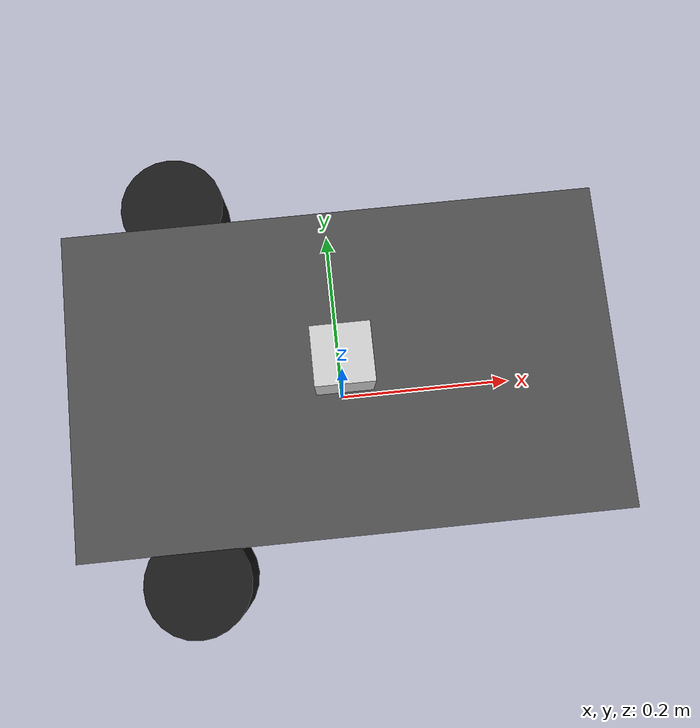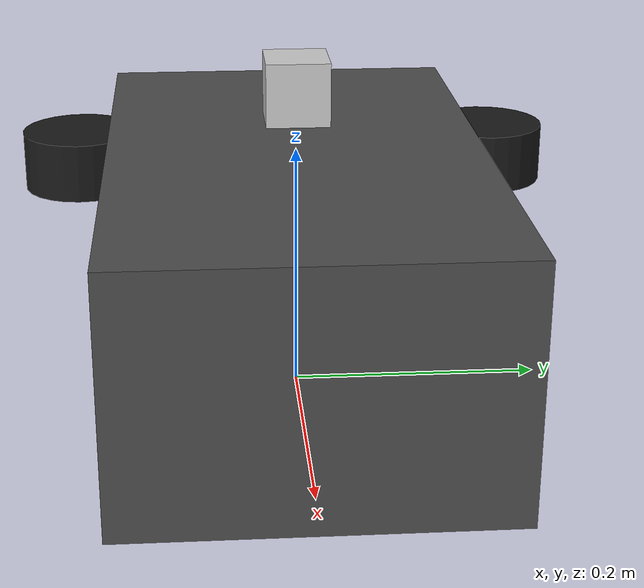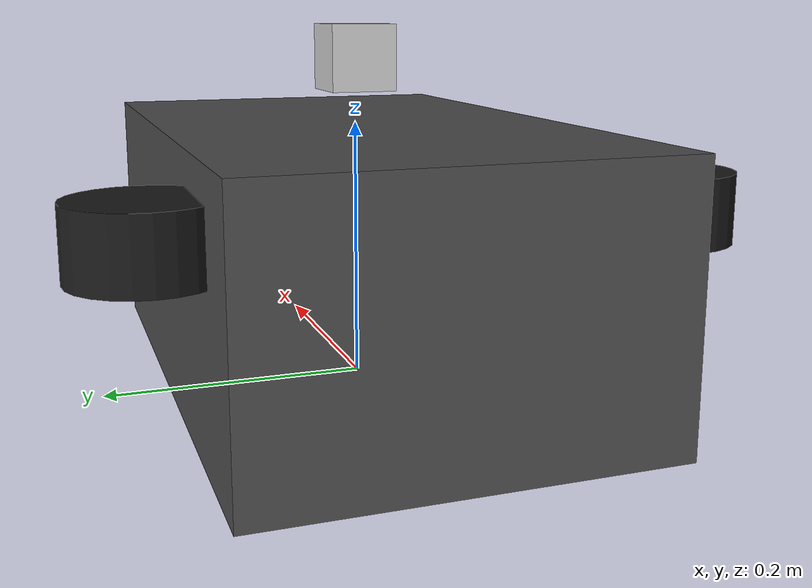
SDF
<?xml version="1.0"?>
<sdf version="1.6">
  <model name="mobile_robot">
    <pose>0 0 0.1 0 0 0</pose>

    <!-- Robot base -->
    <link name="base_link">
      <inertial>
        <mass>5.0</mass>
        <inertia>
          <ixx>0.1</ixx>
          <iyy>0.1</iyy>
          <izz>0.05</izz>
        </inertia>
      </inertial>

      <collision name="base_collision">
        <geometry>
          <box>
            <size>0.5 0.3 0.2</size>
          </box>
        </geometry>
      </collision>

      <visual name="base_visual">
        <geometry>
          <box>
            <size>0.5 0.3 0.2</size>
          </box>
        </geometry>
        <material>
          <ambient>0.3 0.3 0.3 1</ambient>
          <diffuse>0.3 0.3 0.3 1</diffuse>
          <specular>0.5 0.5 0.5 1</specular>
        </material>
      </visual>
    </link>

    <!-- Left wheel -->
    <link name="left_wheel">
      <pose>-0.15 0.18 0.05 0 0 0</pose>
      <inertial>
        <mass>0.5</mass>
        <inertia>
          <ixx>0.01</ixx>
          <iyy>0.01</iyy>
          <izz>0.01</izz>
        </inertia>
      </inertial>

      <collision name="collision">
        <geometry>
          <cylinder>
            <radius>0.05</radius>
            <length>0.05</length>
          </cylinder>
        </geometry>
      </collision>

      <visual name="visual">
        <geometry>
          <cylinder>
            <radius>0.05</radius>
            <length>0.05</length>
          </cylinder>
        </geometry>
        <material>
          <ambient>0.1 0.1 0.1 1</ambient>
          <diffuse>0.1 0.1 0.1 1</diffuse>
        </material>
      </visual>
    </link>

    <!-- Right wheel -->
    <link name="right_wheel">
      <pose>-0.15 -0.18 0.05 0 0 0</pose>
      <inertial>
        <mass>0.5</mass>
        <inertia>
          <ixx>0.01</ixx>
          <iyy>0.01</iyy>
          <izz>0.01</izz>
        </inertia>
      </inertial>

      <collision name="collision">
        <geometry>
          <cylinder>
            <radius>0.05</radius>
            <length>0.05</length>
          </cylinder>
        </geometry>
      </collision>

      <visual name="visual">
        <geometry>
          <cylinder>
            <radius>0.05</radius>
            <length>0.05</length>
          </cylinder>
        </geometry>
        <material>
          <ambient>0.1 0.1 0.1 1</ambient>
          <diffuse>0.1 0.1 0.1 1</diffuse>
        </material>
      </visual>
    </link>

    <!-- Caster wheel front -->
    <link name="caster_front">
      <pose>0.18 0 0.02 0 0 0</pose>
      <inertial>
        <mass>0.2</mass>
        <inertia>
          <ixx>0.005</ixx>
          <iyy>0.005</iyy>
          <izz>0.005</izz>
        </inertia>
      </inertial>

      <collision name="collision">
        <geometry>
          <sphere>
            <radius>0.02</radius>
          </sphere>
        </geometry>
      </collision>

      <visual name="visual">
        <geometry>
          <sphere>
            <radius>0.02</radius>
          </sphere>
        </geometry>
        <material>
          <ambient>0.5 0.5 0.5 1</ambient>
          <diffuse>0.5 0.5 0.5 1</diffuse>
        </material>
      </visual>
    </link>

    <!-- Camera link -->
    <link name="camera_link">
      <pose>0 0 0.15 0 0 0</pose>
      <inertial>
        <mass>0.1</mass>
        <inertia>
          <ixx>0.001</ixx>
          <iyy>0.001</iyy>
          <izz>0.001</izz>
        </inertia>
      </inertial>

      <sensor name="camera" type="camera">
        <camera>
          <horizontal_fov>1.047</horizontal_fov>
          <image>
            <width>320</width>
            <height>240</height>
            <format>R8G8B8</format>
          </image>
          <clip>
            <near>0.1</near>
            <far>100</far>
          </clip>
        </camera>
        <always_on>true</always_on>
        <update_rate>30</update_rate>
        <visualize>true</visualize>
      </sensor>

      <visual name="visual">
        <geometry>
          <box>
            <size>0.05 0.05 0.05</size>
          </box>
        </geometry>
        <material>
          <ambient>0.8 0.8 0.8 1</ambient>
          <diffuse>0.8 0.8 0.8 1</diffuse>
        </material>
      </visual>
    </link>

    <!-- Joints -->
    <joint name="left_wheel_joint" type="revolute">
      <parent>base_link</parent>
      <child>left_wheel</child>
      <axis>
        <xyz>0 1 0</xyz>
      </axis>
    </joint>

    <joint name="right_wheel_joint" type="revolute">
      <parent>base_link</parent>
      <child>right_wheel</child>
      <axis>
        <xyz>0 1 0</xyz>
      </axis>
    </joint>

    <joint name="caster_front_joint" type="ball">
      <parent>base_link</parent>
      <child>caster_front</child>
    </joint>

    <joint name="camera_joint" type="fixed">
      <parent>base_link</parent>
      <child>camera_link</child>
    </joint>

    <!-- Differential drive plugin -->
    <plugin name="differential_drive" filename="libgazebo_ros_diff_drive.so">
      <left_joint>left_wheel_joint</left_joint>
      <right_joint>right_wheel_joint</right_joint>
      <wheel_separation>0.36</wheel_separation>
      <wheel_diameter>0.1</wheel_diameter>
      <max_wheel_torque>20</max_wheel_torque>
      <max_wheel_acceleration>1.0</max_wheel_acceleration>
      <command_topic>cmd_vel</command_topic>
      <publish_odom>true</publish_odom>
      <publish_odom_tf>true</publish_odom_tf>
      <odometry_topic>odom</odometry_topic>
      <odometry_frame>odom</odometry_frame>
      <robot_base_frame>base_link</robot_base_frame>
    </plugin>

    <!-- Camera publisher plugin -->
    <plugin name="camera_controller" filename="libgazebo_ros_camera.so">
      <camera_name>camera</camera_name>
      <frame_name>camera_link</frame_name>
      <hack_baseline>0.07</hack_baseline>
    </plugin>

  </model>
</sdf>
